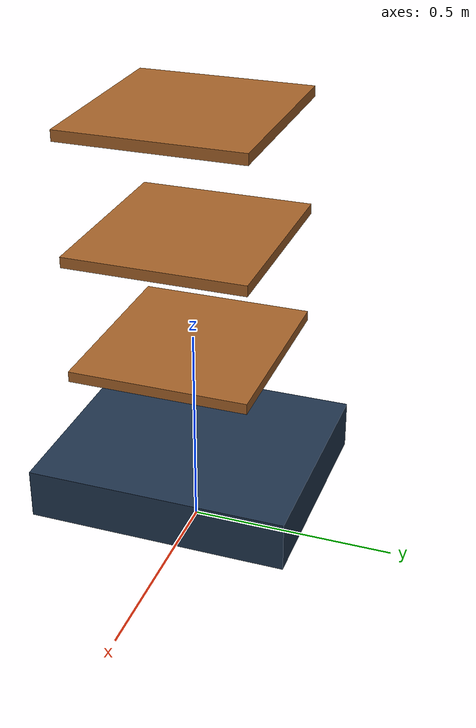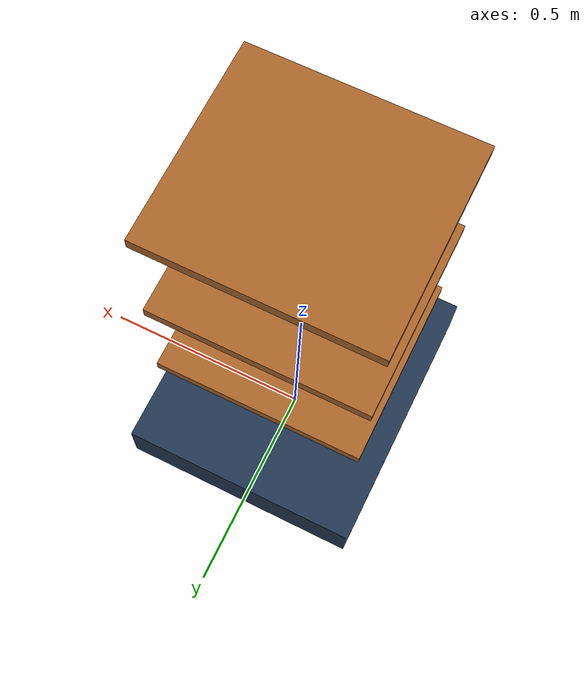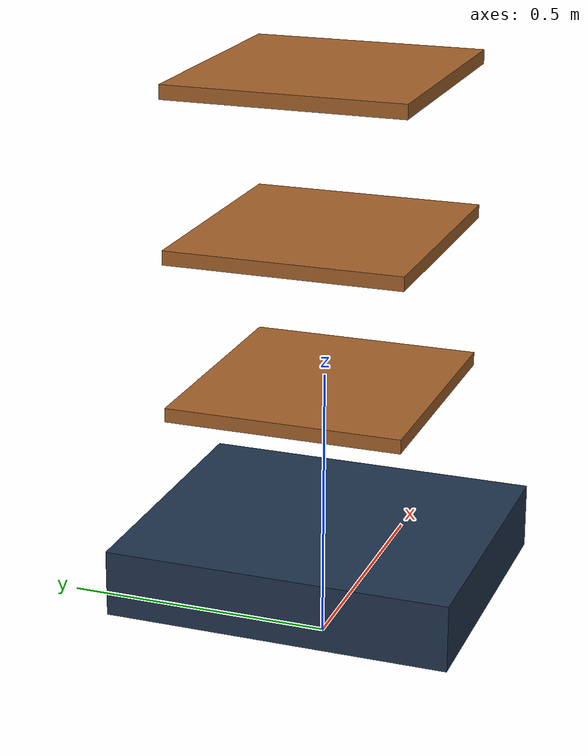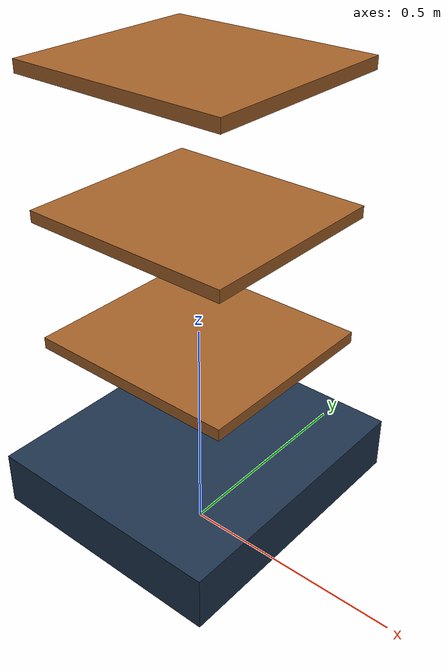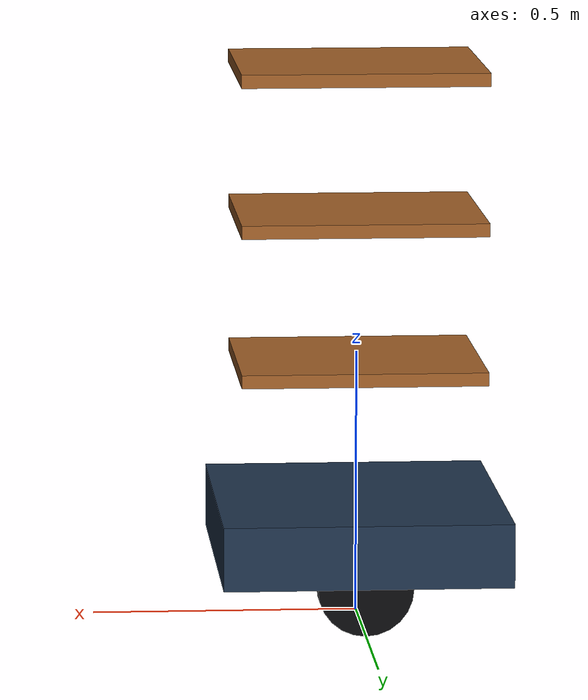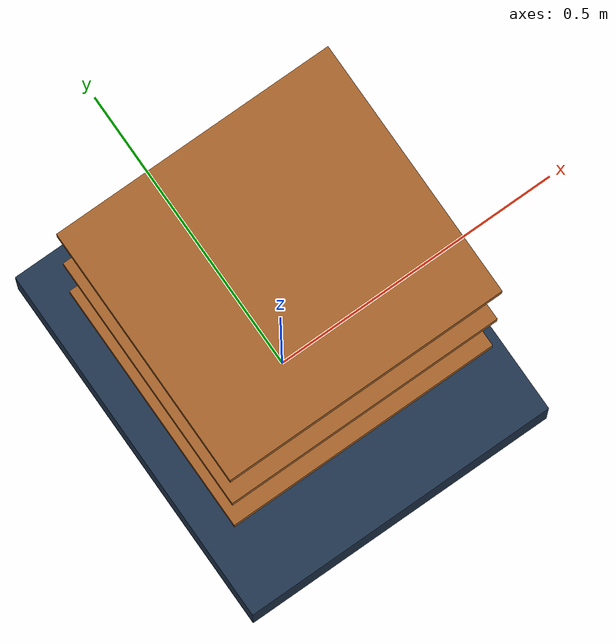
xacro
<?xml version="1.0"?>
<robot xmlns:xacro="http://www.ros.org/wiki/xacro" name="cafe_service_amr">
  <material name="chassis_blue"><color rgba="0.12 0.20 0.30 1.0"/></material>
  <material name="tray_wood"><color rgba="0.64 0.38 0.16 1.0"/></material>
  <material name="dark"><color rgba="0.04 0.04 0.05 1.0"/></material>

  <link name="base_footprint"/>
  <joint name="base_joint" type="fixed">
    <parent link="base_footprint"/><child link="base_link"/>
    <origin xyz="0 0 0.165" rpy="0 0 0"/>
  </joint>
  <link name="base_link">
    <visual><geometry><box size="0.54 0.62 0.12"/></geometry><material name="chassis_blue"/></visual>
    <collision><geometry><box size="0.54 0.62 0.12"/></geometry></collision>
    <inertial><origin xyz="0 0 0.015"/><mass value="18.0"/><inertia ixx="0.594" ixy="0" ixz="0" iyy="0.522" iyz="0" izz="1.014"/></inertial>
  </link>

  <link name="tray_1"><visual><geometry><box size="0.46 0.42 0.025"/></geometry><material name="tray_wood"/></visual><collision><geometry><box size="0.46 0.42 0.025"/></geometry></collision><inertial><mass value="1.2"/><inertia ixx="0.018" ixy="0" ixz="0" iyy="0.022" iyz="0" izz="0.039"/></inertial></link>
  <joint name="tray_1_joint" type="fixed"><parent link="base_link"/><child link="tray_1"/><origin xyz="0 0 0.315"/></joint>
  <link name="tray_2"><visual><geometry><box size="0.46 0.42 0.025"/></geometry><material name="tray_wood"/></visual><collision><geometry><box size="0.46 0.42 0.025"/></geometry></collision><inertial><mass value="1.2"/><inertia ixx="0.018" ixy="0" ixz="0" iyy="0.022" iyz="0" izz="0.039"/></inertial></link>
  <joint name="tray_2_joint" type="fixed"><parent link="base_link"/><child link="tray_2"/><origin xyz="0 0 0.595"/></joint>
  <link name="tray_3"><visual><geometry><box size="0.46 0.42 0.025"/></geometry><material name="tray_wood"/></visual><collision><geometry><box size="0.46 0.42 0.025"/></geometry></collision><inertial><mass value="1.2"/><inertia ixx="0.018" ixy="0" ixz="0" iyy="0.022" iyz="0" izz="0.039"/></inertial></link>
  <joint name="tray_3_joint" type="fixed"><parent link="base_link"/><child link="tray_3"/><origin xyz="0 0 0.875"/></joint>

  <link name="wheel_left_link"><visual><origin rpy="1.5707963 0 0"/><geometry><cylinder radius="0.09" length="0.045"/></geometry><material name="dark"/></visual><collision><origin rpy="1.5707963 0 0"/><geometry><cylinder radius="0.09" length="0.045"/></geometry></collision></link>
  <joint name="wheel_left_joint" type="continuous"><parent link="base_link"/><child link="wheel_left_link"/><origin xyz="0 -0.21 -0.075"/><axis xyz="0 1 0"/></joint>
  <link name="wheel_right_link"><visual><origin rpy="1.5707963 0 0"/><geometry><cylinder radius="0.09" length="0.045"/></geometry><material name="dark"/></visual><collision><origin rpy="1.5707963 0 0"/><geometry><cylinder radius="0.09" length="0.045"/></geometry></collision></link>
  <joint name="wheel_right_joint" type="continuous"><parent link="base_link"/><child link="wheel_right_link"/><origin xyz="0 0.21 -0.075"/><axis xyz="0 1 0"/></joint>

  <link name="base_scan"/>
  <joint name="scan_joint" type="fixed"><parent link="base_link"/><child link="base_scan"/><origin xyz="0 0 0.085"/></joint>
  <link name="imu_link"/>
  <joint name="imu_joint" type="fixed"><parent link="base_link"/><child link="imu_link"/><origin xyz="0 0 0.085"/></joint>
  <link name="camera_link"/>
  <joint name="camera_joint" type="fixed"><parent link="base_link"/><child link="camera_link"/><origin xyz="0.255 0 0.815"/></joint>
  <link name="camera_rgb_frame"/>
  <joint name="camera_rgb_joint" type="fixed"><parent link="camera_link"/><child link="camera_rgb_frame"/><origin xyz="0 0 0"/></joint>
  <link name="camera_rgb_optical_frame"/>
  <joint name="camera_rgb_optical_joint" type="fixed"><parent link="camera_rgb_frame"/><child link="camera_rgb_optical_frame"/><origin xyz="0 0 0" rpy="-1.5707963 0 -1.5707963"/></joint>
</robot>
